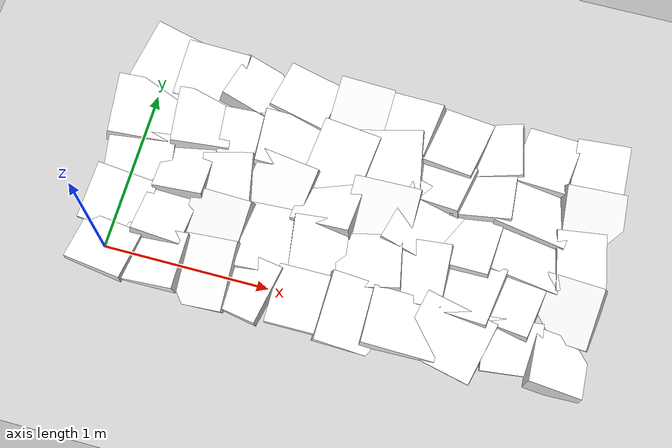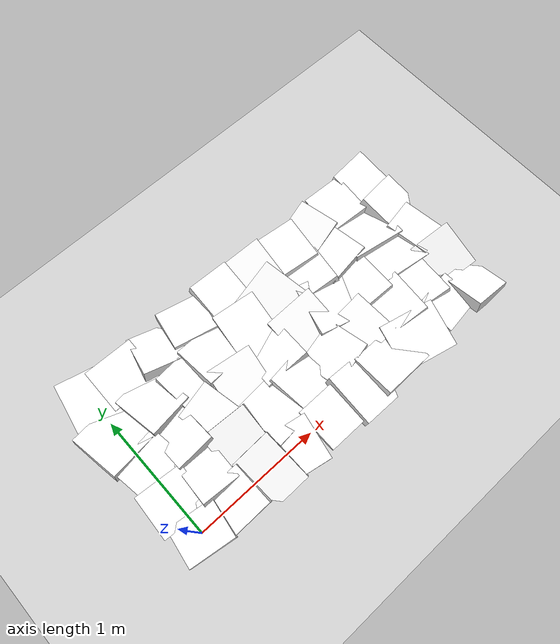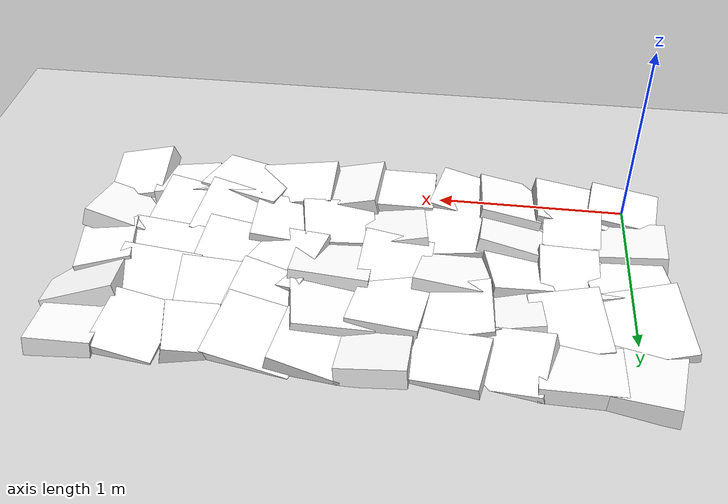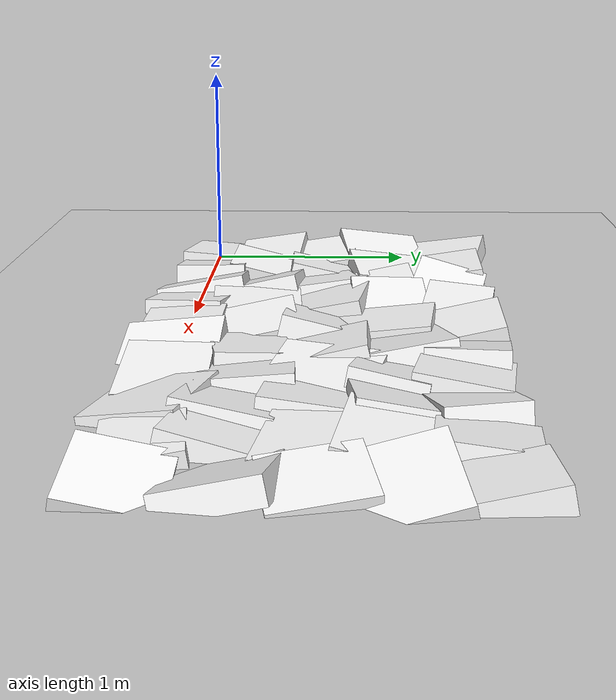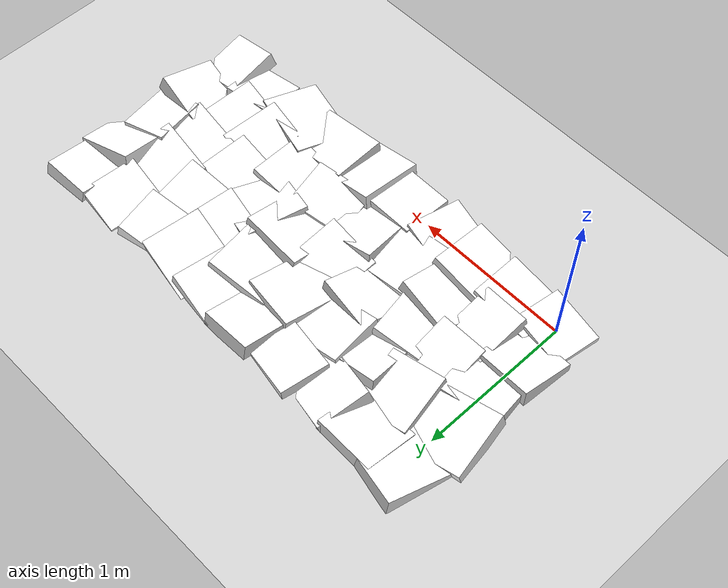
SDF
<sdf version="1.7">
 <world name="default">
  <include><uri>model://sun</uri></include>
  <include><uri>model://ground_plane</uri></include>
  <model name="static_environment">
   <static>true</static>
   <link name="region_0">
    <pose>0.0029797486727225486 -0.0038806564429033873 0.0 -0.039816098956255486 -0.08483258949806294 -0.14767568298107875</pose>
    <collision name="region_0_collision">
     <geometry><box><size>0.36539923532130053 0.30388893477418366 0.1</size></box></geometry>
     <surface><friction><ode><mu>1.0</mu><mu2>1.0</mu2></ode></friction></surface>
    </collision>
    <visual name="region_0_visual">
     <geometry><box><size>0.36539923532130053 0.30388893477418366 0.1</size></box></geometry>
     <material><ambient>1.0 1.0 1.0 1.0</ambient><diffuse>1.0 1.0 1.0 1.0</diffuse></material>
    </visual>
   </link>
   <link name="region_1">
    <pose>0.286009636506172 0.007268029966157691 0.0 0.014571047138519533 -0.18271002732753322 0.006789060632873212</pose>
    <collision name="region_1_collision">
     <geometry><box><size>0.39289064495259957 0.34494820105117846 0.1</size></box></geometry>
     <surface><friction><ode><mu>1.0</mu><mu2>1.0</mu2></ode></friction></surface>
    </collision>
    <visual name="region_1_visual">
     <geometry><box><size>0.39289064495259957 0.34494820105117846 0.1</size></box></geometry>
     <material><ambient>1.0 1.0 1.0 1.0</ambient><diffuse>1.0 1.0 1.0 1.0</diffuse></material>
    </visual>
   </link>
   <link name="region_2">
    <pose>0.6212385175583693 -0.00034578975708433185 0.0 0.173280742678734 -0.2101772614954695 0.0026230450608519806</pose>
    <collision name="region_2_collision">
     <geometry><box><size>0.32766597984703727 0.417800272172501 0.1</size></box></geometry>
     <surface><friction><ode><mu>1.0</mu><mu2>1.0</mu2></ode></friction></surface>
    </collision>
    <visual name="region_2_visual">
     <geometry><box><size>0.32766597984703727 0.417800272172501 0.1</size></box></geometry>
     <material><ambient>1.0 1.0 1.0 1.0</ambient><diffuse>1.0 1.0 1.0 1.0</diffuse></material>
    </visual>
   </link>
   <link name="region_3">
    <pose>0.8757918549396366 -0.022370401697923353 0.0 0.048372654489297895 -0.13699399969788206 -0.19652715784500852</pose>
    <collision name="region_3_collision">
     <geometry><box><size>0.3097929756580317 0.3642183491396084 0.1</size></box></geometry>
     <surface><friction><ode><mu>1.0</mu><mu2>1.0</mu2></ode></friction></surface>
    </collision>
    <visual name="region_3_visual">
     <geometry><box><size>0.3097929756580317 0.3642183491396084 0.1</size></box></geometry>
     <material><ambient>1.0 1.0 1.0 1.0</ambient><diffuse>1.0 1.0 1.0 1.0</diffuse></material>
    </visual>
   </link>
   <link name="region_4">
    <pose>1.198067249074938 -0.01789540642410208 0.0 0.07020336260745741 -0.008465082224124176 0.0026183600092745674</pose>
    <collision name="region_4_collision">
     <geometry><box><size>0.33304593106058394 0.3524739427504949 0.1</size></box></geometry>
     <surface><friction><ode><mu>1.0</mu><mu2>1.0</mu2></ode></friction></surface>
    </collision>
    <visual name="region_4_visual">
     <geometry><box><size>0.33304593106058394 0.3524739427504949 0.1</size></box></geometry>
     <material><ambient>1.0 1.0 1.0 1.0</ambient><diffuse>1.0 1.0 1.0 1.0</diffuse></material>
    </visual>
   </link>
   <link name="region_5">
    <pose>1.5048002507326683 -0.020262084089861167 0.0 0.10037617330357812 0.23227554004462758 4.180585108370938e-06</pose>
    <collision name="region_5_collision">
     <geometry><box><size>0.35803389766778393 0.4190456181662366 0.1</size></box></geometry>
     <surface><friction><ode><mu>1.0</mu><mu2>1.0</mu2></ode></friction></surface>
    </collision>
    <visual name="region_5_visual">
     <geometry><box><size>0.35803389766778393 0.4190456181662366 0.1</size></box></geometry>
     <material><ambient>1.0 1.0 1.0 1.0</ambient><diffuse>1.0 1.0 1.0 1.0</diffuse></material>
    </visual>
   </link>
   <link name="region_6">
    <pose>1.8040286476576626 -0.004347242202233398 0.0 -0.0316263684866005 0.13827959249855015 0.01780208674882816</pose>
    <collision name="region_6_collision">
     <geometry><box><size>0.43342800959192174 0.35124204790066643 0.1</size></box></geometry>
     <surface><friction><ode><mu>1.0</mu><mu2>1.0</mu2></ode></friction></surface>
    </collision>
    <visual name="region_6_visual">
     <geometry><box><size>0.43342800959192174 0.35124204790066643 0.1</size></box></geometry>
     <material><ambient>1.0 1.0 1.0 1.0</ambient><diffuse>1.0 1.0 1.0 1.0</diffuse></material>
    </visual>
   </link>
   <link name="region_7">
    <pose>2.0749256953365016 -0.008019455899498776 0.0 0.17542525200225084 -0.046862478476024594 -0.2363988170525752</pose>
    <collision name="region_7_collision">
     <geometry><box><size>0.44306133404173 0.38163122402221533 0.1</size></box></geometry>
     <surface><friction><ode><mu>1.0</mu><mu2>1.0</mu2></ode></friction></surface>
    </collision>
    <visual name="region_7_visual">
     <geometry><box><size>0.44306133404173 0.38163122402221533 0.1</size></box></geometry>
     <material><ambient>1.0 1.0 1.0 1.0</ambient><diffuse>1.0 1.0 1.0 1.0</diffuse></material>
    </visual>
   </link>
   <link name="region_8">
    <pose>2.429631120685276 0.02823481880263041 0.0 0.1501291755662934 0.050908560702733696 0.13247993022584076</pose>
    <collision name="region_8_collision">
     <geometry><box><size>0.337076585849603 0.31007165561054323 0.1</size></box></geometry>
     <surface><friction><ode><mu>1.0</mu><mu2>1.0</mu2></ode></friction></surface>
    </collision>
    <visual name="region_8_visual">
     <geometry><box><size>0.337076585849603 0.31007165561054323 0.1</size></box></geometry>
     <material><ambient>1.0 1.0 1.0 1.0</ambient><diffuse>1.0 1.0 1.0 1.0</diffuse></material>
    </visual>
   </link>
   <link name="region_9">
    <pose>2.7014440125180217 -0.008602543132634467 0.0 -0.22716051737729998 0.24157672267860636 -0.02932254032257664</pose>
    <collision name="region_9_collision">
     <geometry><box><size>0.3253838169876267 0.343953484772916 0.1</size></box></geometry>
     <surface><friction><ode><mu>1.0</mu><mu2>1.0</mu2></ode></friction></surface>
    </collision>
    <visual name="region_9_visual">
     <geometry><box><size>0.3253838169876267 0.343953484772916 0.1</size></box></geometry>
     <material><ambient>1.0 1.0 1.0 1.0</ambient><diffuse>1.0 1.0 1.0 1.0</diffuse></material>
    </visual>
   </link>
   <link name="region_10">
    <pose>-0.014415314835171777 0.2932133931192457 0.0 0.16600844981725044 0.11837352814355645 -0.06039471652918127</pose>
    <collision name="region_10_collision">
     <geometry><box><size>0.3756000659068729 0.3485311976302048 0.1</size></box></geometry>
     <surface><friction><ode><mu>1.0</mu><mu2>1.0</mu2></ode></friction></surface>
    </collision>
    <visual name="region_10_visual">
     <geometry><box><size>0.3756000659068729 0.3485311976302048 0.1</size></box></geometry>
     <material><ambient>1.0 1.0 1.0 1.0</ambient><diffuse>1.0 1.0 1.0 1.0</diffuse></material>
    </visual>
   </link>
   <link name="region_11">
    <pose>0.2861633278557781 0.30496109331174204 0.0 -0.23722452907515362 0.08110100963416289 -0.05623828706335926</pose>
    <collision name="region_11_collision">
     <geometry><box><size>0.30195260050418254 0.41961074085488903 0.1</size></box></geometry>
     <surface><friction><ode><mu>1.0</mu><mu2>1.0</mu2></ode></friction></surface>
    </collision>
    <visual name="region_11_visual">
     <geometry><box><size>0.30195260050418254 0.41961074085488903 0.1</size></box></geometry>
     <material><ambient>1.0 1.0 1.0 1.0</ambient><diffuse>1.0 1.0 1.0 1.0</diffuse></material>
    </visual>
   </link>
   <link name="region_12">
    <pose>0.5910523140780984 0.30305867431946515 0.0 0.23645534493741244 -0.19361189238096427 -0.09337073578514321</pose>
    <collision name="region_12_collision">
     <geometry><box><size>0.3745610698101769 0.362235875606203 0.1</size></box></geometry>
     <surface><friction><ode><mu>1.0</mu><mu2>1.0</mu2></ode></friction></surface>
    </collision>
    <visual name="region_12_visual">
     <geometry><box><size>0.3745610698101769 0.362235875606203 0.1</size></box></geometry>
     <material><ambient>1.0 1.0 1.0 1.0</ambient><diffuse>1.0 1.0 1.0 1.0</diffuse></material>
    </visual>
   </link>
   <link name="region_13">
    <pose>0.9094507432595426 0.2828781447839972 0.0 -0.041623279902331445 0.07192096707409751 0.08074066335772068</pose>
    <collision name="region_13_collision">
     <geometry><box><size>0.3062696564722965 0.41075996379313506 0.1</size></box></geometry>
     <surface><friction><ode><mu>1.0</mu><mu2>1.0</mu2></ode></friction></surface>
    </collision>
    <visual name="region_13_visual">
     <geometry><box><size>0.3062696564722965 0.41075996379313506 0.1</size></box></geometry>
     <material><ambient>1.0 1.0 1.0 1.0</ambient><diffuse>1.0 1.0 1.0 1.0</diffuse></material>
    </visual>
   </link>
   <link name="region_14">
    <pose>1.2166804895885082 0.2780372524903014 0.0 0.1844583132160394 0.12438893913842725 0.14929282704954044</pose>
    <collision name="region_14_collision">
     <geometry><box><size>0.3255715700225656 0.4322478353622823 0.1</size></box></geometry>
     <surface><friction><ode><mu>1.0</mu><mu2>1.0</mu2></ode></friction></surface>
    </collision>
    <visual name="region_14_visual">
     <geometry><box><size>0.3255715700225656 0.4322478353622823 0.1</size></box></geometry>
     <material><ambient>1.0 1.0 1.0 1.0</ambient><diffuse>1.0 1.0 1.0 1.0</diffuse></material>
    </visual>
   </link>
   <link name="region_15">
    <pose>1.525107518795376 0.3055250746599826 0.0 -0.07688104527242678 -0.11811073535999012 0.206957738582566</pose>
    <collision name="region_15_collision">
     <geometry><box><size>0.3815017845875854 0.33312568725921926 0.1</size></box></geometry>
     <surface><friction><ode><mu>1.0</mu><mu2>1.0</mu2></ode></friction></surface>
    </collision>
    <visual name="region_15_visual">
     <geometry><box><size>0.3815017845875854 0.33312568725921926 0.1</size></box></geometry>
     <material><ambient>1.0 1.0 1.0 1.0</ambient><diffuse>1.0 1.0 1.0 1.0</diffuse></material>
    </visual>
   </link>
   <link name="region_16">
    <pose>1.806506529468303 0.3195749897060495 0.0 0.06178159228106539 -0.16164391920778698 0.04562867632677292</pose>
    <collision name="region_16_collision">
     <geometry><box><size>0.36296031919602306 0.3810287273500696 0.1</size></box></geometry>
     <surface><friction><ode><mu>1.0</mu><mu2>1.0</mu2></ode></friction></surface>
    </collision>
    <visual name="region_16_visual">
     <geometry><box><size>0.36296031919602306 0.3810287273500696 0.1</size></box></geometry>
     <material><ambient>1.0 1.0 1.0 1.0</ambient><diffuse>1.0 1.0 1.0 1.0</diffuse></material>
    </visual>
   </link>
   <link name="region_17">
    <pose>2.111971237187433 0.28474866983424785 0.0 -0.1566864272067599 -0.19470842610191946 -0.11297037373197316</pose>
    <collision name="region_17_collision">
     <geometry><box><size>0.37338992504922885 0.3821861670135565 0.1</size></box></geometry>
     <surface><friction><ode><mu>1.0</mu><mu2>1.0</mu2></ode></friction></surface>
    </collision>
    <visual name="region_17_visual">
     <geometry><box><size>0.37338992504922885 0.3821861670135565 0.1</size></box></geometry>
     <material><ambient>1.0 1.0 1.0 1.0</ambient><diffuse>1.0 1.0 1.0 1.0</diffuse></material>
    </visual>
   </link>
   <link name="region_18">
    <pose>2.3877103383131844 0.28123719268211383 0.0 -0.20235597386959814 -0.10812209626737268 -0.14253780793465237</pose>
    <collision name="region_18_collision">
     <geometry><box><size>0.3015375059099386 0.39440395842443726 0.1</size></box></geometry>
     <surface><friction><ode><mu>1.0</mu><mu2>1.0</mu2></ode></friction></surface>
    </collision>
    <visual name="region_18_visual">
     <geometry><box><size>0.3015375059099386 0.39440395842443726 0.1</size></box></geometry>
     <material><ambient>1.0 1.0 1.0 1.0</ambient><diffuse>1.0 1.0 1.0 1.0</diffuse></material>
    </visual>
   </link>
   <link name="region_19">
    <pose>2.702969809265304 0.32070678693448207 0.0 0.24425485039208217 -0.22556595688532433 -0.13394087428191803</pose>
    <collision name="region_19_collision">
     <geometry><box><size>0.3428405600866353 0.3707114786204518 0.1</size></box></geometry>
     <surface><friction><ode><mu>1.0</mu><mu2>1.0</mu2></ode></friction></surface>
    </collision>
    <visual name="region_19_visual">
     <geometry><box><size>0.3428405600866353 0.3707114786204518 0.1</size></box></geometry>
     <material><ambient>1.0 1.0 1.0 1.0</ambient><diffuse>1.0 1.0 1.0 1.0</diffuse></material>
    </visual>
   </link>
   <link name="region_20">
    <pose>0.022208753602140092 0.5830441455783015 0.0 0.12087751944172448 0.07651025661555055 0.1494427557523148</pose>
    <collision name="region_20_collision">
     <geometry><box><size>0.39649671408723525 0.3242199844337515 0.1</size></box></geometry>
     <surface><friction><ode><mu>1.0</mu><mu2>1.0</mu2></ode></friction></surface>
    </collision>
    <visual name="region_20_visual">
     <geometry><box><size>0.39649671408723525 0.3242199844337515 0.1</size></box></geometry>
     <material><ambient>1.0 1.0 1.0 1.0</ambient><diffuse>1.0 1.0 1.0 1.0</diffuse></material>
    </visual>
   </link>
   <link name="region_21">
    <pose>0.3122776499472275 0.5752537505400673 0.0 -0.23470525840284034 -0.07143253315021963 0.0448909957358819</pose>
    <collision name="region_21_collision">
     <geometry><box><size>0.3046871343397892 0.33443610431165177 0.1</size></box></geometry>
     <surface><friction><ode><mu>1.0</mu><mu2>1.0</mu2></ode></friction></surface>
    </collision>
    <visual name="region_21_visual">
     <geometry><box><size>0.3046871343397892 0.33443610431165177 0.1</size></box></geometry>
     <material><ambient>1.0 1.0 1.0 1.0</ambient><diffuse>1.0 1.0 1.0 1.0</diffuse></material>
    </visual>
   </link>
   <link name="region_22">
    <pose>0.5726100711635829 0.5937090455080503 0.0 0.08421352300802887 -0.1509864440919152 0.18813322585207953</pose>
    <collision name="region_22_collision">
     <geometry><box><size>0.3078334091076241 0.3098495499309566 0.1</size></box></geometry>
     <surface><friction><ode><mu>1.0</mu><mu2>1.0</mu2></ode></friction></surface>
    </collision>
    <visual name="region_22_visual">
     <geometry><box><size>0.3078334091076241 0.3098495499309566 0.1</size></box></geometry>
     <material><ambient>1.0 1.0 1.0 1.0</ambient><diffuse>1.0 1.0 1.0 1.0</diffuse></material>
    </visual>
   </link>
   <link name="region_23">
    <pose>0.8874256045760992 0.6069152744078565 0.0 0.22682998119116132 -0.02599264173795518 -0.14647508087334288</pose>
    <collision name="region_23_collision">
     <geometry><box><size>0.3648583643167271 0.3929462195564947 0.1</size></box></geometry>
     <surface><friction><ode><mu>1.0</mu><mu2>1.0</mu2></ode></friction></surface>
    </collision>
    <visual name="region_23_visual">
     <geometry><box><size>0.3648583643167271 0.3929462195564947 0.1</size></box></geometry>
     <material><ambient>1.0 1.0 1.0 1.0</ambient><diffuse>1.0 1.0 1.0 1.0</diffuse></material>
    </visual>
   </link>
   <link name="region_24">
    <pose>1.2004570492003177 0.6015439949886574 0.0 -0.22878540405872694 -0.16779045691494 -0.02488641019131338</pose>
    <collision name="region_24_collision">
     <geometry><box><size>0.363805093785808 0.36668613971456365 0.1</size></box></geometry>
     <surface><friction><ode><mu>1.0</mu><mu2>1.0</mu2></ode></friction></surface>
    </collision>
    <visual name="region_24_visual">
     <geometry><box><size>0.363805093785808 0.36668613971456365 0.1</size></box></geometry>
     <material><ambient>1.0 1.0 1.0 1.0</ambient><diffuse>1.0 1.0 1.0 1.0</diffuse></material>
    </visual>
   </link>
   <link name="region_25">
    <pose>1.5166261799681786 0.6001667251505532 0.0 0.22837379665362378 -0.08406314373006207 -0.009270918826983388</pose>
    <collision name="region_25_collision">
     <geometry><box><size>0.40619567559283815 0.41663818624583 0.1</size></box></geometry>
     <surface><friction><ode><mu>1.0</mu><mu2>1.0</mu2></ode></friction></surface>
    </collision>
    <visual name="region_25_visual">
     <geometry><box><size>0.40619567559283815 0.41663818624583 0.1</size></box></geometry>
     <material><ambient>1.0 1.0 1.0 1.0</ambient><diffuse>1.0 1.0 1.0 1.0</diffuse></material>
    </visual>
   </link>
   <link name="region_26">
    <pose>1.7948676033079747 0.6209210708560394 0.0 -0.027714529124645393 0.10787354214317713 -0.24577581821059014</pose>
    <collision name="region_26_collision">
     <geometry><box><size>0.41225609990115547 0.42867592776592706 0.1</size></box></geometry>
     <surface><friction><ode><mu>1.0</mu><mu2>1.0</mu2></ode></friction></surface>
    </collision>
    <visual name="region_26_visual">
     <geometry><box><size>0.41225609990115547 0.42867592776592706 0.1</size></box></geometry>
     <material><ambient>1.0 1.0 1.0 1.0</ambient><diffuse>1.0 1.0 1.0 1.0</diffuse></material>
    </visual>
   </link>
   <link name="region_27">
    <pose>2.0761282768938716 0.6097180674263825 0.0 -0.10837062808943959 -0.1495788281122773 -0.05583290894262044</pose>
    <collision name="region_27_collision">
     <geometry><box><size>0.30378021355061235 0.44106757403131325 0.1</size></box></geometry>
     <surface><friction><ode><mu>1.0</mu><mu2>1.0</mu2></ode></friction></surface>
    </collision>
    <visual name="region_27_visual">
     <geometry><box><size>0.30378021355061235 0.44106757403131325 0.1</size></box></geometry>
     <material><ambient>1.0 1.0 1.0 1.0</ambient><diffuse>1.0 1.0 1.0 1.0</diffuse></material>
    </visual>
   </link>
   <link name="region_28">
    <pose>2.425002876717473 0.6121358544491835 0.0 0.0006082258435434751 0.003043416756319417 -0.14058960683531363</pose>
    <collision name="region_28_collision">
     <geometry><box><size>0.43888523947627484 0.3855411314626078 0.1</size></box></geometry>
     <surface><friction><ode><mu>1.0</mu><mu2>1.0</mu2></ode></friction></surface>
    </collision>
    <visual name="region_28_visual">
     <geometry><box><size>0.43888523947627484 0.3855411314626078 0.1</size></box></geometry>
     <material><ambient>1.0 1.0 1.0 1.0</ambient><diffuse>1.0 1.0 1.0 1.0</diffuse></material>
    </visual>
   </link>
   <link name="region_29">
    <pose>2.703802566620342 0.6225937121053996 0.0 0.08879242011395472 0.17116652305173563 0.21308064346245997</pose>
    <collision name="region_29_collision">
     <geometry><box><size>0.30069952841025743 0.36267543660040735 0.1</size></box></geometry>
     <surface><friction><ode><mu>1.0</mu><mu2>1.0</mu2></ode></friction></surface>
    </collision>
    <visual name="region_29_visual">
     <geometry><box><size>0.30069952841025743 0.36267543660040735 0.1</size></box></geometry>
     <material><ambient>1.0 1.0 1.0 1.0</ambient><diffuse>1.0 1.0 1.0 1.0</diffuse></material>
    </visual>
   </link>
   <link name="region_30">
    <pose>-0.022116323671233368 0.8907978008994157 0.0 -0.14574875273723875 0.18369076857826172 0.14616510965312896</pose>
    <collision name="region_30_collision">
     <geometry><box><size>0.4411673810450433 0.42240287278865907 0.1</size></box></geometry>
     <surface><friction><ode><mu>1.0</mu><mu2>1.0</mu2></ode></friction></surface>
    </collision>
    <visual name="region_30_visual">
     <geometry><box><size>0.4411673810450433 0.42240287278865907 0.1</size></box></geometry>
     <material><ambient>1.0 1.0 1.0 1.0</ambient><diffuse>1.0 1.0 1.0 1.0</diffuse></material>
    </visual>
   </link>
   <link name="region_31">
    <pose>0.3183078924153421 0.9199896746840385 0.0 -0.147103161524964 0.1153401002630578 0.1517070820797245</pose>
    <collision name="region_31_collision">
     <geometry><box><size>0.35235024610257887 0.38537107980834534 0.1</size></box></geometry>
     <surface><friction><ode><mu>1.0</mu><mu2>1.0</mu2></ode></friction></surface>
    </collision>
    <visual name="region_31_visual">
     <geometry><box><size>0.35235024610257887 0.38537107980834534 0.1</size></box></geometry>
     <material><ambient>1.0 1.0 1.0 1.0</ambient><diffuse>1.0 1.0 1.0 1.0</diffuse></material>
    </visual>
   </link>
   <link name="region_32">
    <pose>0.5961050189915297 0.8832528733116446 0.0 0.19031103308284036 0.10984376886220565 0.1065036467734905</pose>
    <collision name="region_32_collision">
     <geometry><box><size>0.30646935545300436 0.31607811063473695 0.1</size></box></geometry>
     <surface><friction><ode><mu>1.0</mu><mu2>1.0</mu2></ode></friction></surface>
    </collision>
    <visual name="region_32_visual">
     <geometry><box><size>0.30646935545300436 0.31607811063473695 0.1</size></box></geometry>
     <material><ambient>1.0 1.0 1.0 1.0</ambient><diffuse>1.0 1.0 1.0 1.0</diffuse></material>
    </visual>
   </link>
   <link name="region_33">
    <pose>0.8837166151099859 0.9075806375520615 0.0 -0.042760375237305415 0.21839053611709297 0.07122620945139613</pose>
    <collision name="region_33_collision">
     <geometry><box><size>0.41547894854890527 0.3496120539254107 0.1</size></box></geometry>
     <surface><friction><ode><mu>1.0</mu><mu2>1.0</mu2></ode></friction></surface>
    </collision>
    <visual name="region_33_visual">
     <geometry><box><size>0.41547894854890527 0.3496120539254107 0.1</size></box></geometry>
     <material><ambient>1.0 1.0 1.0 1.0</ambient><diffuse>1.0 1.0 1.0 1.0</diffuse></material>
    </visual>
   </link>
   <link name="region_34">
    <pose>1.1928475550229725 0.8806985896666631 0.0 0.1408297128330407 -0.013895706292099297 -0.12025979779786145</pose>
    <collision name="region_34_collision">
     <geometry><box><size>0.3580350514518552 0.4282679491206286 0.1</size></box></geometry>
     <surface><friction><ode><mu>1.0</mu><mu2>1.0</mu2></ode></friction></surface>
    </collision>
    <visual name="region_34_visual">
     <geometry><box><size>0.3580350514518552 0.4282679491206286 0.1</size></box></geometry>
     <material><ambient>1.0 1.0 1.0 1.0</ambient><diffuse>1.0 1.0 1.0 1.0</diffuse></material>
    </visual>
   </link>
   <link name="region_35">
    <pose>1.4847752153380673 0.9174146281556427 0.0 0.13116762211202943 -0.189980103911293 0.1694512972795003</pose>
    <collision name="region_35_collision">
     <geometry><box><size>0.4038598868821846 0.44707276184981676 0.1</size></box></geometry>
     <surface><friction><ode><mu>1.0</mu><mu2>1.0</mu2></ode></friction></surface>
    </collision>
    <visual name="region_35_visual">
     <geometry><box><size>0.4038598868821846 0.44707276184981676 0.1</size></box></geometry>
     <material><ambient>1.0 1.0 1.0 1.0</ambient><diffuse>1.0 1.0 1.0 1.0</diffuse></material>
    </visual>
   </link>
   <link name="region_36">
    <pose>1.802180608385764 0.8877907650476776 0.0 -0.1621379033716347 -0.21038091464960018 -0.15055045408525042</pose>
    <collision name="region_36_collision">
     <geometry><box><size>0.36926083571347973 0.31886720738296315 0.1</size></box></geometry>
     <surface><friction><ode><mu>1.0</mu><mu2>1.0</mu2></ode></friction></surface>
    </collision>
    <visual name="region_36_visual">
     <geometry><box><size>0.36926083571347973 0.31886720738296315 0.1</size></box></geometry>
     <material><ambient>1.0 1.0 1.0 1.0</ambient><diffuse>1.0 1.0 1.0 1.0</diffuse></material>
    </visual>
   </link>
   <link name="region_37">
    <pose>2.075242750727388 0.9129438352662578 0.0 -0.19912759451830897 -0.16220046454558906 0.1066607810787053</pose>
    <collision name="region_37_collision">
     <geometry><box><size>0.3644382928584621 0.3962717645443248 0.1</size></box></geometry>
     <surface><friction><ode><mu>1.0</mu><mu2>1.0</mu2></ode></friction></surface>
    </collision>
    <visual name="region_37_visual">
     <geometry><box><size>0.3644382928584621 0.3962717645443248 0.1</size></box></geometry>
     <material><ambient>1.0 1.0 1.0 1.0</ambient><diffuse>1.0 1.0 1.0 1.0</diffuse></material>
    </visual>
   </link>
   <link name="region_38">
    <pose>2.4091744170420726 0.8986641811803824 0.0 -0.20610622255750277 0.029475397348638355 -0.15942488529567678</pose>
    <collision name="region_38_collision">
     <geometry><box><size>0.4327895511615734 0.4474707541564608 0.1</size></box></geometry>
     <surface><friction><ode><mu>1.0</mu><mu2>1.0</mu2></ode></friction></surface>
    </collision>
    <visual name="region_38_visual">
     <geometry><box><size>0.4327895511615734 0.4474707541564608 0.1</size></box></geometry>
     <material><ambient>1.0 1.0 1.0 1.0</ambient><diffuse>1.0 1.0 1.0 1.0</diffuse></material>
    </visual>
   </link>
   <link name="region_39">
    <pose>2.719992749407356 0.8894250349353687 0.0 0.24443104665985327 0.2474751299838966 0.16307540971989837</pose>
    <collision name="region_39_collision">
     <geometry><box><size>0.37716030907068304 0.39133952234015873 0.1</size></box></geometry>
     <surface><friction><ode><mu>1.0</mu><mu2>1.0</mu2></ode></friction></surface>
    </collision>
    <visual name="region_39_visual">
     <geometry><box><size>0.37716030907068304 0.39133952234015873 0.1</size></box></geometry>
     <material><ambient>1.0 1.0 1.0 1.0</ambient><diffuse>1.0 1.0 1.0 1.0</diffuse></material>
    </visual>
   </link>
   <link name="region_40">
    <pose>0.022516128588279755 1.2270906089007438 0.0 0.1761314632987756 0.07046931988943211 -0.2132508076427817</pose>
    <collision name="region_40_collision">
     <geometry><box><size>0.4041228818137775 0.4100504697145465 0.1</size></box></geometry>
     <surface><friction><ode><mu>1.0</mu><mu2>1.0</mu2></ode></friction></surface>
    </collision>
    <visual name="region_40_visual">
     <geometry><box><size>0.4041228818137775 0.4100504697145465 0.1</size></box></geometry>
     <material><ambient>1.0 1.0 1.0 1.0</ambient><diffuse>1.0 1.0 1.0 1.0</diffuse></material>
    </visual>
   </link>
   <link name="region_41">
    <pose>0.2798867173934578 1.2235899711940226 0.0 0.1624452406033397 0.013319211926416663 -0.018275371923213768</pose>
    <collision name="region_41_collision">
     <geometry><box><size>0.3935077071443758 0.35298208376782775 0.1</size></box></geometry>
     <surface><friction><ode><mu>1.0</mu><mu2>1.0</mu2></ode></friction></surface>
    </collision>
    <visual name="region_41_visual">
     <geometry><box><size>0.3935077071443758 0.35298208376782775 0.1</size></box></geometry>
     <material><ambient>1.0 1.0 1.0 1.0</ambient><diffuse>1.0 1.0 1.0 1.0</diffuse></material>
    </visual>
   </link>
   <link name="region_42">
    <pose>0.5941582753879888 1.1962001927836217 0.0 -0.24247193287581498 0.19645294153935788 -0.23542534107624413</pose>
    <collision name="region_42_collision">
     <geometry><box><size>0.37339519321906883 0.33910800295791776 0.1</size></box></geometry>
     <surface><friction><ode><mu>1.0</mu><mu2>1.0</mu2></ode></friction></surface>
    </collision>
    <visual name="region_42_visual">
     <geometry><box><size>0.37339519321906883 0.33910800295791776 0.1</size></box></geometry>
     <material><ambient>1.0 1.0 1.0 1.0</ambient><diffuse>1.0 1.0 1.0 1.0</diffuse></material>
    </visual>
   </link>
   <link name="region_43">
    <pose>0.8818178592210022 1.2265452367438285 0.0 -0.06436441416605182 0.11450040091073849 -0.18691994568548925</pose>
    <collision name="region_43_collision">
     <geometry><box><size>0.35593393260175893 0.3143809972039158 0.1</size></box></geometry>
     <surface><friction><ode><mu>1.0</mu><mu2>1.0</mu2></ode></friction></surface>
    </collision>
    <visual name="region_43_visual">
     <geometry><box><size>0.35593393260175893 0.3143809972039158 0.1</size></box></geometry>
     <material><ambient>1.0 1.0 1.0 1.0</ambient><diffuse>1.0 1.0 1.0 1.0</diffuse></material>
    </visual>
   </link>
   <link name="region_44">
    <pose>1.2241977690293409 1.1872581154929531 0.0 0.23355656575614814 0.08404966781259549 0.0015033867671632728</pose>
    <collision name="region_44_collision">
     <geometry><box><size>0.3376924382560814 0.4321852945681847 0.1</size></box></geometry>
     <surface><friction><ode><mu>1.0</mu><mu2>1.0</mu2></ode></friction></surface>
    </collision>
    <visual name="region_44_visual">
     <geometry><box><size>0.3376924382560814 0.4321852945681847 0.1</size></box></geometry>
     <material><ambient>1.0 1.0 1.0 1.0</ambient><diffuse>1.0 1.0 1.0 1.0</diffuse></material>
    </visual>
   </link>
   <link name="region_45">
    <pose>1.5271206423049801 1.2116000297153533 0.0 0.01705085003666862 -0.22825515103186128 -0.12622456218872974</pose>
    <collision name="region_45_collision">
     <geometry><box><size>0.3567003612972833 0.35060524414446875 0.1</size></box></geometry>
     <surface><friction><ode><mu>1.0</mu><mu2>1.0</mu2></ode></friction></surface>
    </collision>
    <visual name="region_45_visual">
     <geometry><box><size>0.3567003612972833 0.35060524414446875 0.1</size></box></geometry>
     <material><ambient>1.0 1.0 1.0 1.0</ambient><diffuse>1.0 1.0 1.0 1.0</diffuse></material>
    </visual>
   </link>
   <link name="region_46">
    <pose>1.791451093941314 1.1705670224482738 0.0 -0.12322586638753852 -0.12288665492473161 -0.16465723698298695</pose>
    <collision name="region_46_collision">
     <geometry><box><size>0.4414756084000812 0.383529024936488 0.1</size></box></geometry>
     <surface><friction><ode><mu>1.0</mu><mu2>1.0</mu2></ode></friction></surface>
    </collision>
    <visual name="region_46_visual">
     <geometry><box><size>0.4414756084000812 0.383529024936488 0.1</size></box></geometry>
     <material><ambient>1.0 1.0 1.0 1.0</ambient><diffuse>1.0 1.0 1.0 1.0</diffuse></material>
    </visual>
   </link>
   <link name="region_47">
    <pose>2.0737740924108508 1.1758776237531754 0.0 -0.0016362488429424449 -0.21516970479377728 0.21757678167574418</pose>
    <collision name="region_47_collision">
     <geometry><box><size>0.3517469939515787 0.33039735770215856 0.1</size></box></geometry>
     <surface><friction><ode><mu>1.0</mu><mu2>1.0</mu2></ode></friction></surface>
    </collision>
    <visual name="region_47_visual">
     <geometry><box><size>0.3517469939515787 0.33039735770215856 0.1</size></box></geometry>
     <material><ambient>1.0 1.0 1.0 1.0</ambient><diffuse>1.0 1.0 1.0 1.0</diffuse></material>
    </visual>
   </link>
   <link name="region_48">
    <pose>2.394880095426398 1.1874802631059789 0.0 -0.0882357425899779 -0.14420120829193012 -0.10986585611490063</pose>
    <collision name="region_48_collision">
     <geometry><box><size>0.3309146452755875 0.36963185249385694 0.1</size></box></geometry>
     <surface><friction><ode><mu>1.0</mu><mu2>1.0</mu2></ode></friction></surface>
    </collision>
    <visual name="region_48_visual">
     <geometry><box><size>0.3309146452755875 0.36963185249385694 0.1</size></box></geometry>
     <material><ambient>1.0 1.0 1.0 1.0</ambient><diffuse>1.0 1.0 1.0 1.0</diffuse></material>
    </visual>
   </link>
   <link name="region_49">
    <pose>2.7086715713624674 1.188691764200579 0.0 0.19014947807874838 -0.05681213745271957 0.05554465015943427</pose>
    <collision name="region_49_collision">
     <geometry><box><size>0.31756575535448844 0.4033877812166316 0.1</size></box></geometry>
     <surface><friction><ode><mu>1.0</mu><mu2>1.0</mu2></ode></friction></surface>
    </collision>
    <visual name="region_49_visual">
     <geometry><box><size>0.31756575535448844 0.4033877812166316 0.1</size></box></geometry>
     <material><ambient>1.0 1.0 1.0 1.0</ambient><diffuse>1.0 1.0 1.0 1.0</diffuse></material>
    </visual>
   </link>
  </model>
 </world>
</sdf>
